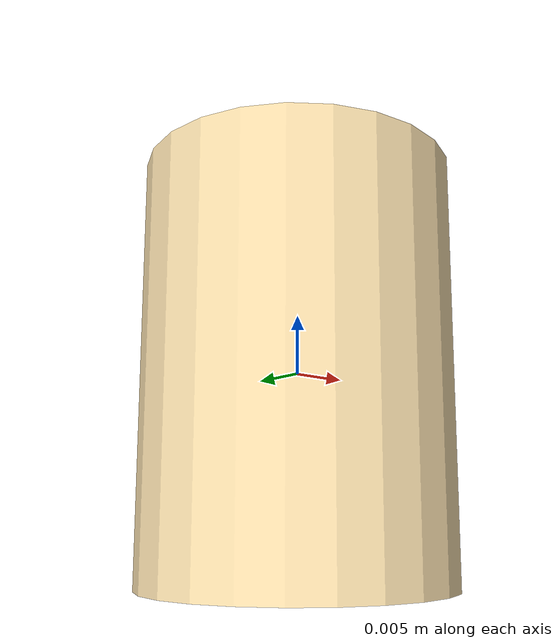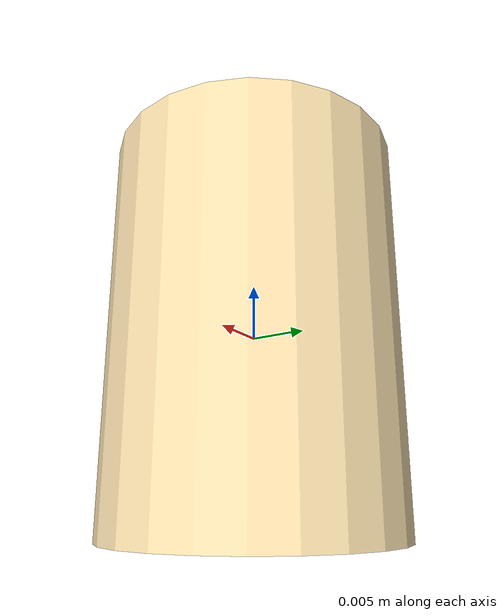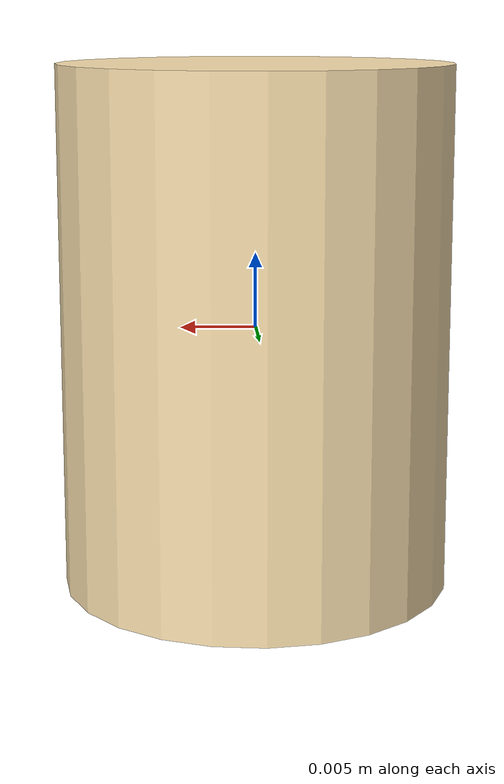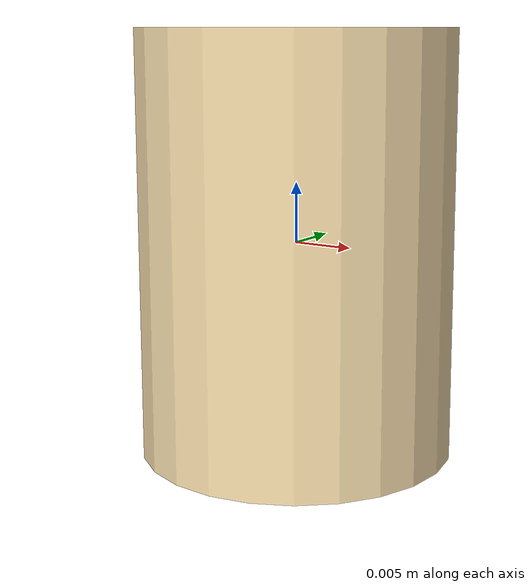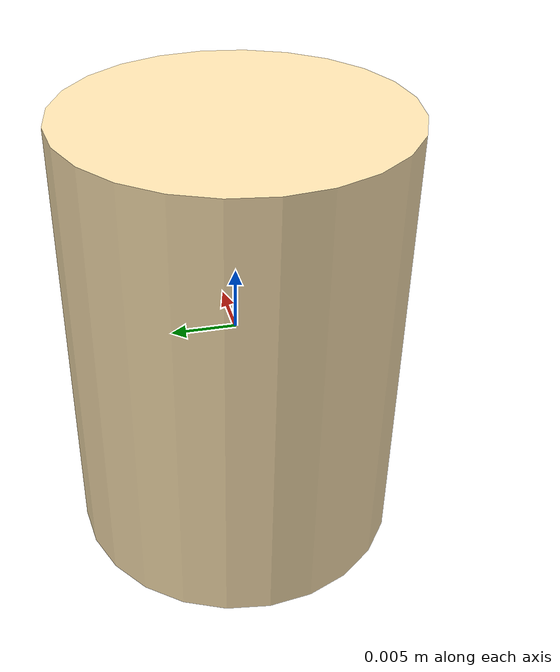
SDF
<?xml version="1.0" ?>
<sdf version="1.5">
  <!-- Miniature cup: r=0.013 h=0.035 → width=26mm (pickable, hand_close=22) -->
  <model name="beaker">
    <link name="link">
      <pose>0 0 0 0 0 0</pose>
      <inertial>
        <mass>0.015</mass>
        <inertia>
          <ixx>2.27e-6</ixx>
          <ixy>0</ixy><ixz>0</ixz>
          <iyy>2.27e-6</iyy>
          <iyz>0</iyz>
          <izz>1.27e-6</izz>
        </inertia>
      </inertial>
      <collision name="collision">
        <geometry>
          <cylinder><radius>0.013</radius><length>0.035</length></cylinder>
        </geometry>
        <surface>
          <contact><ode><kp>1000000</kp><kd>100</kd><max_vel>0.1</max_vel><min_depth>0.001</min_depth></ode></contact>
          <friction><ode><mu>1.0</mu><mu2>1.0</mu2></ode><torsional><coefficient>1.0</coefficient><use_patch_radius>0</use_patch_radius><surface_radius>0.013</surface_radius></torsional></friction>
        </surface>
      </collision>
      <visual name="visual">
        <geometry><cylinder><radius>0.013</radius><length>0.035</length></cylinder></geometry>
        <material><ambient>1.0 0.9 0.7 1</ambient><diffuse>1.0 0.9 0.7 1</diffuse></material>
      </visual>
    </link>
  </model>
</sdf>
